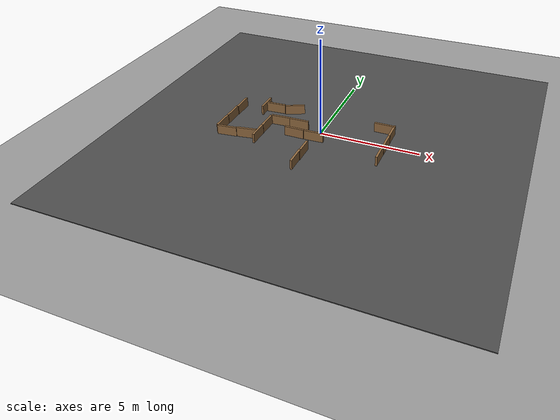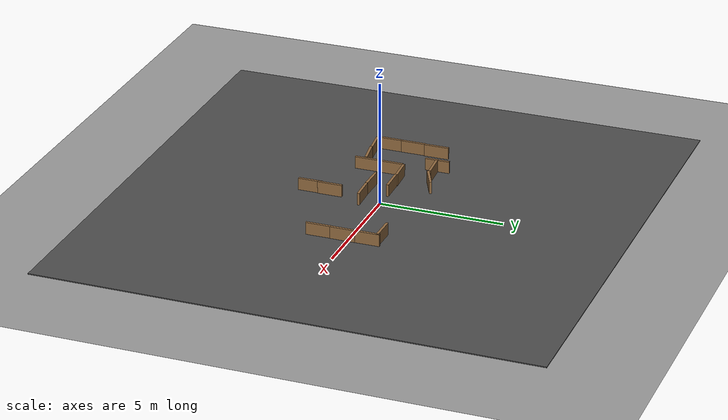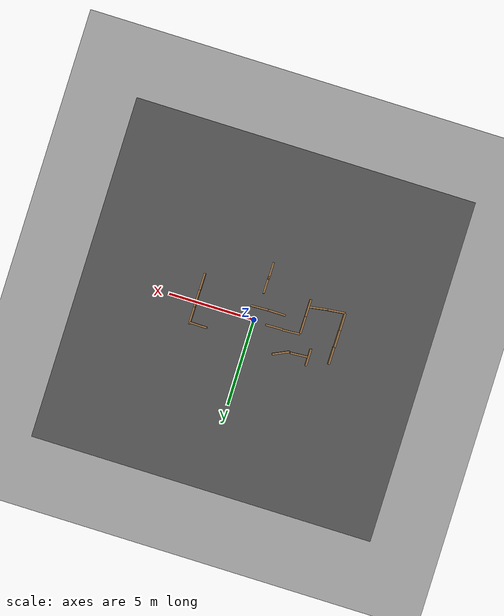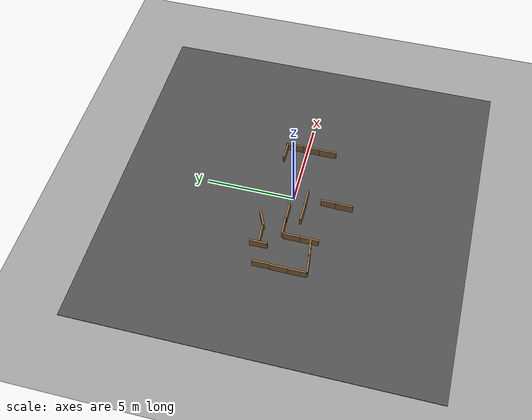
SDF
<sdf version="1.6">
 <world name="default">
  <light name="sun" type="directional">
   <pose>0 0 10 0 -0 0</pose>
   <diffuse>0.8 0.8 0.8 1</diffuse>
   <specular>0.2 0.2 0.2 1</specular>
   <attenuation>
    <range>1000</range>
    <constant>0.9</constant>
    <linear>0.01</linear>
    <quadratic>0.001</quadratic>
   </attenuation>
   <direction>-0.5 0.1 -0.9</direction>
  </light>
  <physics name="default_physics" default="0" type="ode">
   <max_step_size>0.001</max_step_size>
   <real_time_factor>1</real_time_factor>
   <real_time_update_rate>1000</real_time_update_rate>
  </physics>
  <scene><ambient>0.4 0.4 0.4 1</ambient><background>0.7 0.7 0.7 1</background><shadows>1</shadows></scene>
  <spherical_coordinates>
   <surface_model>EARTH_WGS84</surface_model>
   <latitude_deg>0</latitude_deg>
   <longitude_deg>0</longitude_deg>
   <elevation>0</elevation>
   <heading_deg>0</heading_deg>
  </spherical_coordinates>
  <model name="ground_plane_0">
   <static>1</static>
   <link name="link">
    <collision name="collision">
     <geometry><plane><normal>0 0 1</normal><size>100 100</size></plane></geometry>
     <surface><friction><ode><mu>100</mu><mu2>50</mu2></ode></friction></surface>
    </collision>
    <visual name="visual">
     <cast_shadows>0</cast_shadows>
     <geometry><plane><normal>0 0 1</normal><size>100 100</size></plane></geometry>
     <material>
      <script><uri>file://media/materials/scripts/gazebo.material</uri><name>Gazebo/Grey</name></script>
     </material>
    </visual>
    <velocity_decay><linear>0</linear><angular>0</angular></velocity_decay>
   </link>
   <pose>-1 0 0 0 -0 0</pose>
  </model>
  <model name="asphalt_plane_0">
   <static>1</static>
   <link name="link">
    <collision name="collision"><geometry><box><size>20 20 0.1</size></box></geometry></collision>
    <visual name="visual">
     <cast_shadows>0</cast_shadows>
     <geometry><box><size>20 20 0.1</size></box></geometry>
     <material>
      <script>
       <uri>model://asphalt_plane/materials/scripts</uri>
       <uri>model://asphalt_plane/materials/textures</uri>
       <name>vrc/asphalt</name>
      </script>
     </material>
    </visual>
    <velocity_decay><linear>0</linear><angular>0</angular></velocity_decay>
   </link>
   <pose>0.040908 -0.01627 -0.039005 0 -0 0</pose>
  </model>
  <model name="mascor_pappTown_wall">
   <pose>-4.7127 0.627608 0 0 -0 0</pose>
   <static>1</static>
   <link name="link">
    <pose>0 0 0.25 0 -0 0</pose>
    <collision name="collision"><geometry><box><size>0.1 1 0.5</size></box></geometry></collision>
    <visual name="visual">
     <geometry><box><size>0.1 1 0.5</size></box></geometry>
     <material>
      <ambient>0.5 0.5 0.5 1</ambient>
      <diffuse>0.57 0.417 0.25 1</diffuse>
      <specular>0.1 0.1 0.1 1</specular>
      <emissive>0 0 0 0</emissive>
     </material>
    </visual>
    <velocity_decay><linear>0</linear><angular>0</angular></velocity_decay>
   </link>
  </model>
  <model name="mascor_pappTown_wall_0">
   <pose>-4.73882 -0.360759 0 0 -0 0</pose>
   <static>1</static>
   <link name="link">
    <pose>0 0 0.25 0 -0 0</pose>
    <collision name="collision"><geometry><box><size>0.1 1 0.5</size></box></geometry></collision>
    <visual name="visual">
     <geometry><box><size>0.1 1 0.5</size></box></geometry>
     <material>
      <ambient>0.5 0.5 0.5 1</ambient>
      <diffuse>0.57 0.417 0.25 1</diffuse>
      <specular>0.1 0.1 0.1 1</specular>
      <emissive>0 0 0 0</emissive>
     </material>
    </visual>
    <velocity_decay><linear>0</linear><angular>0</angular></velocity_decay>
   </link>
  </model>
  <model name="mascor_pappTown_wall_1">
   <pose>-4.74876 -1.3596 0 0 -0 0</pose>
   <static>1</static>
   <link name="link">
    <pose>0 0 0.25 0 -0 0</pose>
    <collision name="collision"><geometry><box><size>0.1 1 0.5</size></box></geometry></collision>
    <visual name="visual">
     <geometry><box><size>0.1 1 0.5</size></box></geometry>
     <material>
      <ambient>0.5 0.5 0.5 1</ambient>
      <diffuse>0.57 0.417 0.25 1</diffuse>
      <specular>0.1 0.1 0.1 1</specular>
      <emissive>0 0 0 0</emissive>
     </material>
    </visual>
    <velocity_decay><linear>0</linear><angular>0</angular></velocity_decay>
   </link>
  </model>
  <model name="mascor_pappTown_wall_2">
   <pose>-3.23369 -1.69263 0.022969 0 -0 1.72608</pose>
   <static>1</static>
   <link name="link">
    <pose>0 0 0.25 0 -0 0</pose>
    <collision name="collision"><geometry><box><size>0.1 1 0.5</size></box></geometry></collision>
    <visual name="visual">
     <geometry><box><size>0.1 1 0.5</size></box></geometry>
     <material>
      <ambient>0.5 0.5 0.5 1</ambient>
      <diffuse>0.57 0.417 0.25 1</diffuse>
      <specular>0.1 0.1 0.1 1</specular>
      <emissive>0 0 0 0</emissive>
     </material>
    </visual>
    <velocity_decay><linear>0</linear><angular>0</angular></velocity_decay>
   </link>
  </model>
  <model name="mascor_pappTown_wall_3">
   <pose>-2.68707 -0.555734 0 0 -0 0</pose>
   <static>1</static>
   <link name="link">
    <pose>0 0 0.25 0 -0 0</pose>
    <collision name="collision"><geometry><box><size>0.1 1 0.5</size></box></geometry></collision>
    <visual name="visual">
     <geometry><box><size>0.1 1 0.5</size></box></geometry>
     <material>
      <ambient>0.5 0.5 0.5 1</ambient>
      <diffuse>0.57 0.417 0.25 1</diffuse>
      <specular>0.1 0.1 0.1 1</specular>
      <emissive>0 0 0 0</emissive>
     </material>
    </visual>
    <velocity_decay><linear>0</linear><angular>0</angular></velocity_decay>
   </link>
  </model>
  <model name="mascor_pappTown_wall_4">
   <pose>-4.23803 -1.82334 -0.011112 0 -0 1.68393</pose>
   <static>1</static>
   <link name="link">
    <pose>0 0 0.25 0 -0 0</pose>
    <collision name="collision"><geometry><box><size>0.1 1 0.5</size></box></geometry></collision>
    <visual name="visual">
     <geometry><box><size>0.1 1 0.5</size></box></geometry>
     <material>
      <ambient>0.5 0.5 0.5 1</ambient>
      <diffuse>0.57 0.417 0.25 1</diffuse>
      <specular>0.1 0.1 0.1 1</specular>
      <emissive>0 0 0 0</emissive>
     </material>
    </visual>
    <velocity_decay><linear>0</linear><angular>0</angular></velocity_decay>
   </link>
  </model>
  <model name="mascor_pappTown_wall_5">
   <pose>-2.69074 -1.53481 0 0 -0 0</pose>
   <static>1</static>
   <link name="link">
    <pose>0 0 0.25 0 -0 0</pose>
    <collision name="collision"><geometry><box><size>0.1 1 0.5</size></box></geometry></collision>
    <visual name="visual">
     <geometry><box><size>0.1 1 0.5</size></box></geometry>
     <material>
      <ambient>0.5 0.5 0.5 1</ambient>
      <diffuse>0.57 0.417 0.25 1</diffuse>
      <specular>0.1 0.1 0.1 1</specular>
      <emissive>0 0 0 0</emissive>
     </material>
    </visual>
    <velocity_decay><linear>0</linear><angular>0</angular></velocity_decay>
   </link>
  </model>
  <model name="mascor_pappTown_wall_6">
   <pose>-1.09758 -0.76378 0.006571 0 -0 1.56166</pose>
   <static>1</static>
   <link name="link">
    <pose>0 0 0.25 0 -0 0</pose>
    <collision name="collision"><geometry><box><size>0.1 1 0.5</size></box></geometry></collision>
    <visual name="visual">
     <geometry><box><size>0.1 1 0.5</size></box></geometry>
     <material>
      <ambient>0.5 0.5 0.5 1</ambient>
      <diffuse>0.57 0.417 0.25 1</diffuse>
      <specular>0.1 0.1 0.1 1</specular>
      <emissive>0 0 0 0</emissive>
     </material>
    </visual>
    <velocity_decay><linear>0</linear><angular>0</angular></velocity_decay>
   </link>
  </model>
  <model name="mascor_pappTown_wall_7">
   <pose>-2.16812 0.023299 0.00413 0 0 -1.51199</pose>
   <static>1</static>
   <link name="link">
    <pose>0 0 0.25 0 -0 0</pose>
    <collision name="collision"><geometry><box><size>0.1 1 0.5</size></box></geometry></collision>
    <visual name="visual">
     <geometry><box><size>0.1 1 0.5</size></box></geometry>
     <material>
      <ambient>0.5 0.5 0.5 1</ambient>
      <diffuse>0.57 0.417 0.25 1</diffuse>
      <specular>0.1 0.1 0.1 1</specular>
      <emissive>0 0 0 0</emissive>
     </material>
    </visual>
    <velocity_decay><linear>0</linear><angular>0</angular></velocity_decay>
   </link>
  </model>
  <model name="mascor_pappTown_wall_8">
   <pose>-3.51495 1.09124 0 0 -0 0</pose>
   <static>1</static>
   <link name="link">
    <pose>0 0 0.25 0 -0 0</pose>
    <collision name="collision"><geometry><box><size>0.1 1 0.5</size></box></geometry></collision>
    <visual name="visual">
     <geometry><box><size>0.1 1 0.5</size></box></geometry>
     <material>
      <ambient>0.5 0.5 0.5 1</ambient>
      <diffuse>0.57 0.417 0.25 1</diffuse>
      <specular>0.1 0.1 0.1 1</specular>
      <emissive>0 0 0 0</emissive>
     </material>
    </visual>
    <velocity_decay><linear>0</linear><angular>0</angular></velocity_decay>
   </link>
  </model>
  <model name="mascor_pappTown_wall_9">
   <pose>3.40536 -0.207296 0 0 -0 0</pose>
   <static>1</static>
   <link name="link">
    <pose>0 0 0.25 0 -0 0</pose>
    <collision name="collision"><geometry><box><size>0.1 1 0.5</size></box></geometry></collision>
    <visual name="visual">
     <geometry><box><size>0.1 1 0.5</size></box></geometry>
     <material>
      <ambient>0.5 0.5 0.5 1</ambient>
      <diffuse>0.57 0.417 0.25 1</diffuse>
      <specular>0.1 0.1 0.1 1</specular>
      <emissive>0 0 0 0</emissive>
     </material>
    </visual>
    <velocity_decay><linear>0</linear><angular>0</angular></velocity_decay>
   </link>
  </model>
  <model name="mascor_pappTown_wall_10">
   <pose>-2.95297 1.11487 0.013799 0 -0 1.63751</pose>
   <static>1</static>
   <link name="link">
    <pose>0 0 0.25 0 -0 0</pose>
    <collision name="collision"><geometry><box><size>0.1 1 0.5</size></box></geometry></collision>
    <visual name="visual">
     <geometry><box><size>0.1 1 0.5</size></box></geometry>
     <material>
      <ambient>0.5 0.5 0.5 1</ambient>
      <diffuse>0.57 0.417 0.25 1</diffuse>
      <specular>0.1 0.1 0.1 1</specular>
      <emissive>0 0 0 0</emissive>
     </material>
    </visual>
    <velocity_decay><linear>0</linear><angular>0</angular></velocity_decay>
   </link>
  </model>
  <model name="mascor_pappTown_wall_11">
   <pose>-0.088864 -2.88897 0 0 -0 0</pose>
   <static>1</static>
   <link name="link">
    <pose>0 0 0.25 0 -0 0</pose>
    <collision name="collision"><geometry><box><size>0.1 1 0.5</size></box></geometry></collision>
    <visual name="visual">
     <geometry><box><size>0.1 1 0.5</size></box></geometry>
     <material>
      <ambient>0.5 0.5 0.5 1</ambient>
      <diffuse>0.57 0.417 0.25 1</diffuse>
      <specular>0.1 0.1 0.1 1</specular>
      <emissive>0 0 0 0</emissive>
     </material>
    </visual>
    <velocity_decay><linear>0</linear><angular>0</angular></velocity_decay>
   </link>
  </model>
  <model name="mascor_pappTown_wall_12">
   <pose>3.3998 0.783908 0 0 -0 0</pose>
   <static>1</static>
   <link name="link">
    <pose>0 0 0.25 0 -0 0</pose>
    <collision name="collision"><geometry><box><size>0.1 1 0.5</size></box></geometry></collision>
    <visual name="visual">
     <geometry><box><size>0.1 1 0.5</size></box></geometry>
     <material>
      <ambient>0.5 0.5 0.5 1</ambient>
      <diffuse>0.57 0.417 0.25 1</diffuse>
      <specular>0.1 0.1 0.1 1</specular>
      <emissive>0 0 0 0</emissive>
     </material>
    </visual>
    <velocity_decay><linear>0</linear><angular>0</angular></velocity_decay>
   </link>
  </model>
  <model name="mascor_pappTown_wall_13">
   <pose>-0.063899 -2.08129 0 0 -0 0</pose>
   <static>1</static>
   <link name="link">
    <pose>0 0 0.25 0 -0 0</pose>
    <collision name="collision"><geometry><box><size>0.1 1 0.5</size></box></geometry></collision>
    <visual name="visual">
     <geometry><box><size>0.1 1 0.5</size></box></geometry>
     <material>
      <ambient>0.5 0.5 0.5 1</ambient>
      <diffuse>0.57 0.417 0.25 1</diffuse>
      <specular>0.1 0.1 0.1 1</specular>
      <emissive>0 0 0 0</emissive>
     </material>
    </visual>
    <velocity_decay><linear>0</linear><angular>0</angular></velocity_decay>
   </link>
  </model>
  <model name="mascor_pappTown_wall_14">
   <pose>-0.08568 -0.746313 0.006768 0 -0 1.60987</pose>
   <static>1</static>
   <link name="link">
    <pose>0 0 0.25 0 -0 0</pose>
    <collision name="collision"><geometry><box><size>0.1 1 0.5</size></box></geometry></collision>
    <visual name="visual">
     <geometry><box><size>0.1 1 0.5</size></box></geometry>
     <material>
      <ambient>0.5 0.5 0.5 1</ambient>
      <diffuse>0.57 0.417 0.25 1</diffuse>
      <specular>0.1 0.1 0.1 1</specular>
      <emissive>0 0 0 0</emissive>
     </material>
    </visual>
    <velocity_decay><linear>0</linear><angular>0</angular></velocity_decay>
   </link>
  </model>
  <model name="mascor_pappTown_wall_16">
   <pose>-1.18563 0.042977 0.008215 0 -0 1.59736</pose>
   <static>1</static>
   <link name="link">
    <pose>0 0 0.25 0 -0 0</pose>
    <collision name="collision"><geometry><box><size>0.1 1 0.5</size></box></geometry></collision>
    <visual name="visual">
     <geometry><box><size>0.1 1 0.5</size></box></geometry>
     <material>
      <ambient>0.5 0.5 0.5 1</ambient>
      <diffuse>0.57 0.417 0.25 1</diffuse>
      <specular>0.1 0.1 0.1 1</specular>
      <emissive>0 0 0 0</emissive>
     </material>
    </visual>
    <velocity_decay><linear>0</linear><angular>0</angular></velocity_decay>
   </link>
  </model>
  <model name="mascor_pappTown_wall_17">
   <pose>3.3939 -1.18467 0 0 -0 0</pose>
   <static>1</static>
   <link name="link">
    <pose>0 0 0.25 0 -0 0</pose>
    <collision name="collision"><geometry><box><size>0.1 1 0.5</size></box></geometry></collision>
    <visual name="visual">
     <geometry><box><size>0.1 1 0.5</size></box></geometry>
     <material>
      <ambient>0.5 0.5 0.5 1</ambient>
      <diffuse>0.57 0.417 0.25 1</diffuse>
      <specular>0.1 0.1 0.1 1</specular>
      <emissive>0 0 0 0</emissive>
     </material>
    </visual>
    <velocity_decay><linear>0</linear><angular>0</angular></velocity_decay>
   </link>
  </model>
  <model name="mascor_pappTown_wall_18">
   <pose>2.89691 1.19654 0.007745 0 -0 1.56081</pose>
   <static>1</static>
   <link name="link">
    <pose>0 0 0.25 0 -0 0</pose>
    <collision name="collision"><geometry><box><size>0.1 1 0.5</size></box></geometry></collision>
    <visual name="visual">
     <geometry><box><size>0.1 1 0.5</size></box></geometry>
     <material>
      <ambient>0.5 0.5 0.5 1</ambient>
      <diffuse>0.57 0.417 0.25 1</diffuse>
      <specular>0.1 0.1 0.1 1</specular>
      <emissive>0 0 0 0</emissive>
     </material>
    </visual>
    <velocity_decay><linear>0</linear><angular>0</angular></velocity_decay>
   </link>
  </model>
  <model name="mascor_pappTown_wall_19">
   <pose>-1.97158 1.31027 0.008101 0 -0 2.01046</pose>
   <static>1</static>
   <link name="link">
    <pose>0 0 0.25 0 -0 0</pose>
    <collision name="collision"><geometry><box><size>0.1 1 0.5</size></box></geometry></collision>
    <visual name="visual">
     <geometry><box><size>0.1 1 0.5</size></box></geometry>
     <material>
      <ambient>0.5 0.5 0.5 1</ambient>
      <diffuse>0.57 0.417 0.25 1</diffuse>
      <specular>0.1 0.1 0.1 1</specular>
      <emissive>0 0 0 0</emissive>
     </material>
    </visual>
    <velocity_decay><linear>0</linear><angular>0</angular></velocity_decay>
   </link>
  </model>
  <gravity>0 0 -9.8</gravity>
  <magnetic_field>6e-06 2.3e-05 -4.2e-05</magnetic_field>
  <atmosphere type="adiabatic"/>
 </world>
</sdf>
